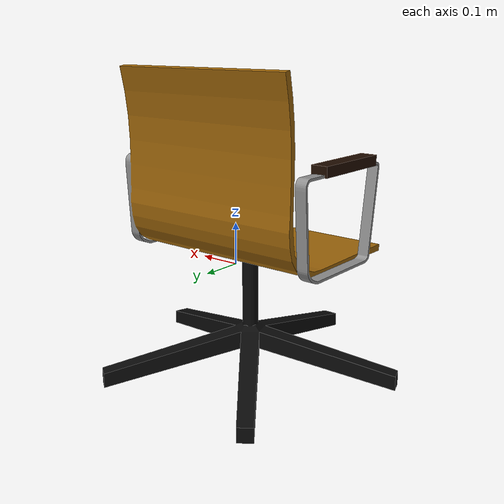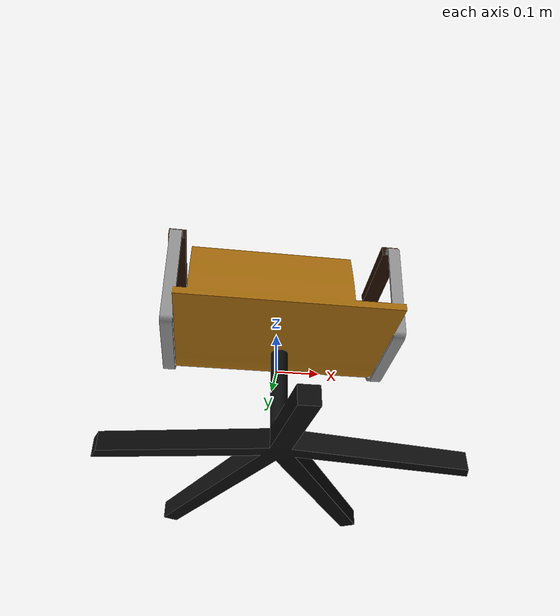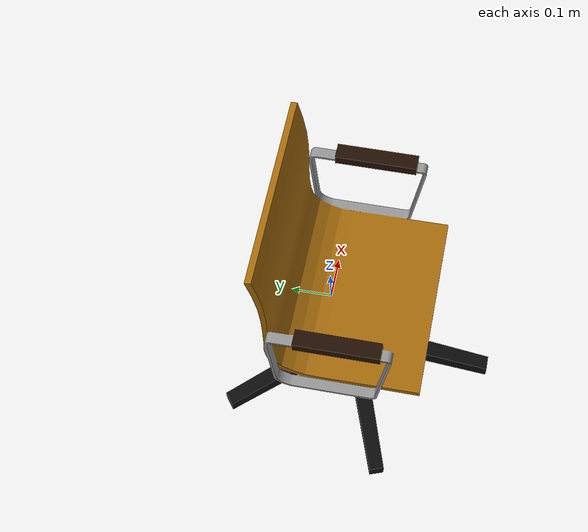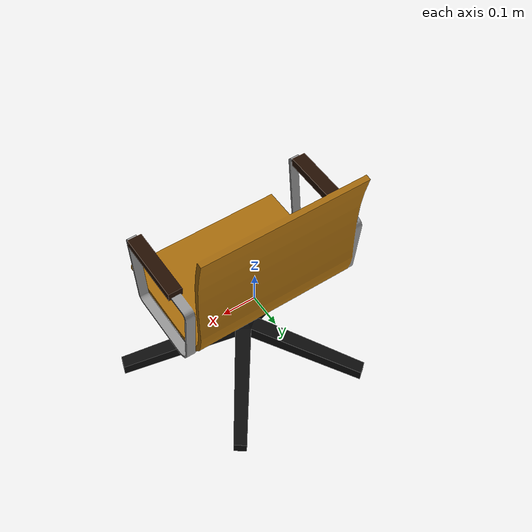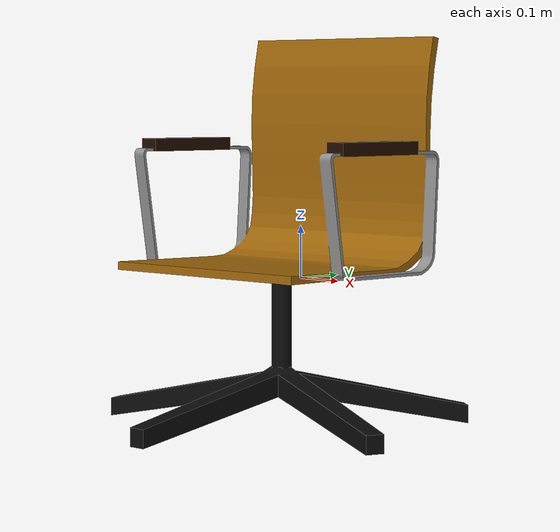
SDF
<?xml version='1.0'?>
<sdf version='1.5'>
    <model name="413_meeting_chair">
        <pose>0 0 0 0 0 0</pose>
        <static>false</static>
        <link name='model_body'>
            <visual name="visual">
                <geometry>
                    <mesh>
                        <uri>model://rs_gazebo/meshes/ss_hq4/413_meeting_chair/413_meeting_chair_visual.dae</uri>
                        <scale>1 1 1</scale>
                    </mesh>
                </geometry>
            </visual>

            <collision name="collision">
                <geometry>
                    <mesh>
                        <uri>model://rs_gazebo/meshes/ss_hq4/413_meeting_chair/413_meeting_chair_collision.stl</uri>
                        <scale>1 1 1</scale>
                    </mesh>
                </geometry>
            </collision>

            <inertial>
                <pose> 0 0 0 0 0 0</pose>
                <inertia>
                    <ixx>0.473958333333</ixx>
                    <ixy>0</ixy>
                    <ixz>0</ixz>
                    <iyy>0.550316666667</iyy>
                    <iyz>0</iyz>
                    <izz>0.181358333333</izz>
                </inertia>
                <mass>7.0</mass>
            </inertial>
        </link>
    </model>
</sdf>
